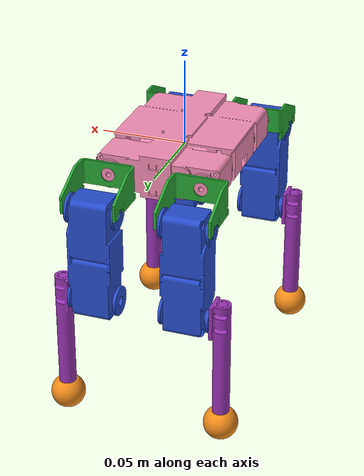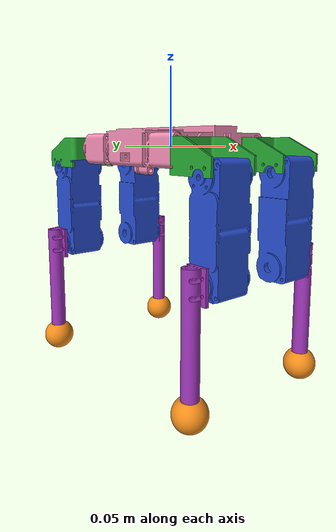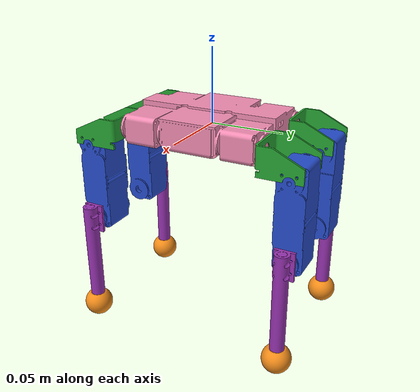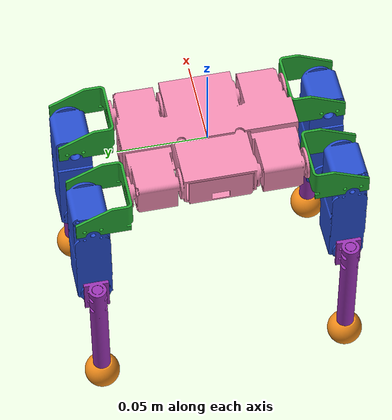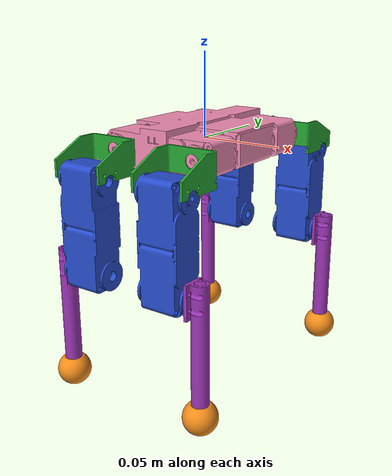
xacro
<?xml version="1.0"?>
<robot name="quarobo" xmlns:xacro="http://ros.org/wiki/xacro">

    <xacro:include filename="$(find quarobo_description)/urdf/leg/leg.urdf.xacro"/>

    <link name="base_link"/>

    <!-- === body === -->
    <xacro:leg_macro_fi prefix="body" parent="base_link" mesh="body.stl" color="pink">
        <origin xyz="0 0 0" rpy="0 0 0"/>
    </xacro:leg_macro_fi>

    <!-- === Front right === -->
    <xacro:leg_macro_re prefix="FRS" parent="body_link" mesh="FR_Shoulder.stl" color="green">
        <origin xyz="-0.027 -0.04905 -0.00150" rpy="0 0 0"/>
        <axis xyz="0 1 0"/>
    </xacro:leg_macro_re>

    <xacro:leg_macro_re prefix="FRL" parent="FRS_link" mesh="FR_Thigh.stl" color="blue">
        <origin xyz="0 -0.022304 -0.01230" rpy="1.57 0 0"/>
        <axis xyz="1 0 0"/>
    </xacro:leg_macro_re>

    <xacro:leg_macro_re prefix="FRF" parent="FRL_link" mesh="FR_Shin.stl" color="purple">
        <origin xyz="-0.01455 -0.054 0" rpy="0 0 0"/>
        <axis xyz="1 0 0"/>
    </xacro:leg_macro_re>

    <xacro:leg_macro_fi prefix="FRT" parent="FRF_link" mesh="FR_Toe.stl" color="orange">
        <origin xyz="-0.00550 -0.06800 0" rpy="0 0 0"/>
    </xacro:leg_macro_fi>

    <!-- === Front left === -->
    <xacro:leg_macro_re prefix="FLS" parent="body_link" mesh="FL_Shoulder.stl" color="green">
        <origin xyz="0.027 -0.04905 -0.00150" rpy="0 0 0"/>
        <axis xyz="0 1 0"/>
    </xacro:leg_macro_re>

    <xacro:leg_macro_re prefix="FLL" parent="FLS_link" mesh="FL_Thigh.stl" color="blue">
        <origin xyz="0 -0.022304 -0.01230" rpy="1.57 0 0"/>
        <axis xyz="1 0 0"/>
    </xacro:leg_macro_re>

    <xacro:leg_macro_re prefix="FLF" parent="FLL_link" mesh="FL_Shin.stl" color="purple">
        <origin xyz="0.01455 -0.054 0" rpy="0 0 0"/>
        <axis xyz="1 0 0"/>
    </xacro:leg_macro_re>

    <xacro:leg_macro_fi prefix="FLT" parent="FLF_link" mesh="FL_Toe.stl" color="orange">
        <origin xyz="0.00550 -0.06800 0" rpy="0 0 0"/>
    </xacro:leg_macro_fi>

    <!-- === Rear right === -->
    <xacro:leg_macro_re prefix="RRS" parent="body_link" mesh="RR_Shoulder.stl" color="green">
        <origin xyz="-0.027 0.04905 -0.00150" rpy="0 0 0"/>
        <axis xyz="0 1 0"/>
    </xacro:leg_macro_re>

    <xacro:leg_macro_re prefix="RRL" parent="RRS_link" mesh="RR_Thigh.stl" color="blue">
        <origin xyz="0 0.022304 -0.01230" rpy="-1.57 0 0"/>
        <axis xyz="1 0 0"/>
    </xacro:leg_macro_re>

    <xacro:leg_macro_re prefix="RRF" parent="RRL_link" mesh="RR_Shin.stl" color="purple">
        <origin xyz="-0.01455 0.054 0" rpy="0 0 0"/>
        <axis xyz="1 0 0"/>
    </xacro:leg_macro_re>

    <xacro:leg_macro_fi prefix="RRT" parent="RRF_link" mesh="RR_Toe.stl" color="orange">
        <origin xyz="-0.00550 0.06800 0" rpy="0 0 0"/>
    </xacro:leg_macro_fi>

    <!-- === Rear left === -->
    <xacro:leg_macro_re prefix="RLS" parent="body_link" mesh="RL_Shoulder.stl" color="green">
        <origin xyz="0.027 0.04905 -0.00150" rpy="0 0 0"/>
        <axis xyz="0 1 0"/>
    </xacro:leg_macro_re>

    <xacro:leg_macro_re prefix="RLL" parent="RLS_link" mesh="RL_Thigh.stl" color="blue">
        <origin xyz="0 0.022304 -0.01230" rpy="-1.57 0 0"/>
        <axis xyz="1 0 0"/>
    </xacro:leg_macro_re>

    <xacro:leg_macro_re prefix="RLF" parent="RLL_link" mesh="RL_Shin.stl" color="purple">
        <origin xyz="0.01455 0.054 0" rpy="0 0 0"/>
        <axis xyz="1 0 0"/>
    </xacro:leg_macro_re>

    <xacro:leg_macro_fi prefix="RLT" parent="RLF_link" mesh="RL_Toe.stl" color="orange">
        <origin xyz="0.00550 0.06800 0" rpy="0 0 0"/>
    </xacro:leg_macro_fi>

</robot>

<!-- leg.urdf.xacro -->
<robot xmlns:xacro="http://ros.org/wiki/xacro">

    <xacro:include filename="$(find quarobo_description)/urdf/material/material.urdf.xacro"/>

        <!-- === fixed === -->
    <xacro:macro name="leg_macro_fi" params="prefix parent mesh color *joint_origin">

        <joint name="${prefix}_joint" type="fixed">
            <parent link="${parent}"/>
            <child link="${prefix}_link"/>
            <xacro:insert_block name="joint_origin"/>
        </joint>

        <link name="${prefix}_link">
            <inertial>
                <origin xyz="0 0 0" rpy="0 0 0"/>
                <mass value="0.020"/>
                <inertia
                    ixx="0.1" ixy="0" ixz="0"
                    iyy="0.1" iyz="0"
                    izz="0.1"/>
            </inertial>
            <visual>
                <origin xyz="0 0 0" rpy="0 0 0"/>
                <geometry>
                    <mesh filename="package://quarobo_description/meshes/quarobo_stlFiles/${mesh}"/>
                </geometry>
                <material name="${color}"/>
            </visual>
        </link>

    </xacro:macro>

    <!-- === revolute === -->
    <xacro:macro name="leg_macro_re" params="prefix parent mesh color *joint_origin *joint_axis">

        <joint name="${prefix}_joint" type="revolute">
            <parent link="${parent}"/>
            <child link="${prefix}_link"/>
            <xacro:insert_block name="joint_origin"/>
            <xacro:insert_block name="joint_axis"/>
            <limit lower="-2.61" upper="2.61" effort="1000" velocity="0.5"/>
            <dynamics damping="0.1"/>
        </joint>

        <link name="${prefix}_link">
            <inertial>
                <origin xyz="0 0 0" rpy="0 0 0"/>
                <mass value="0.020"/>
                <inertia
                    ixx="0.1" ixy="0" ixz="0"
                    iyy="0.1" iyz="0"
                    izz="0.1"/>
            </inertial>
            <visual>
                <origin xyz="0 0 0" rpy="0 0 0"/>
                <geometry>
                    <mesh filename="package://quarobo_description/meshes/quarobo_stlFiles/${mesh}"/>
                </geometry>
                <material name="${color}"/>
            </visual>
        </link>

    </xacro:macro>

</robot>
